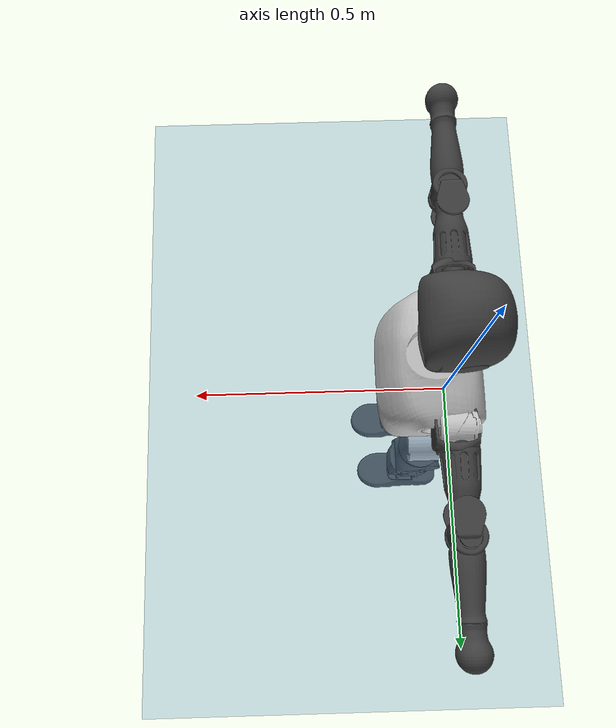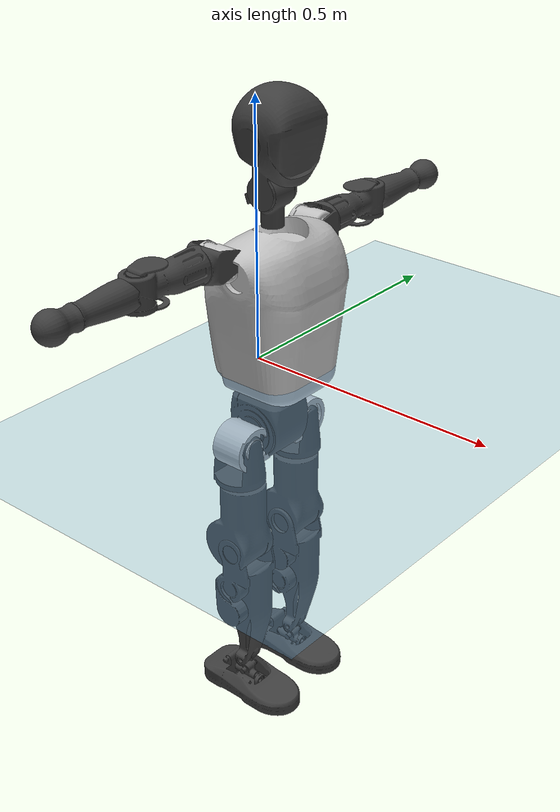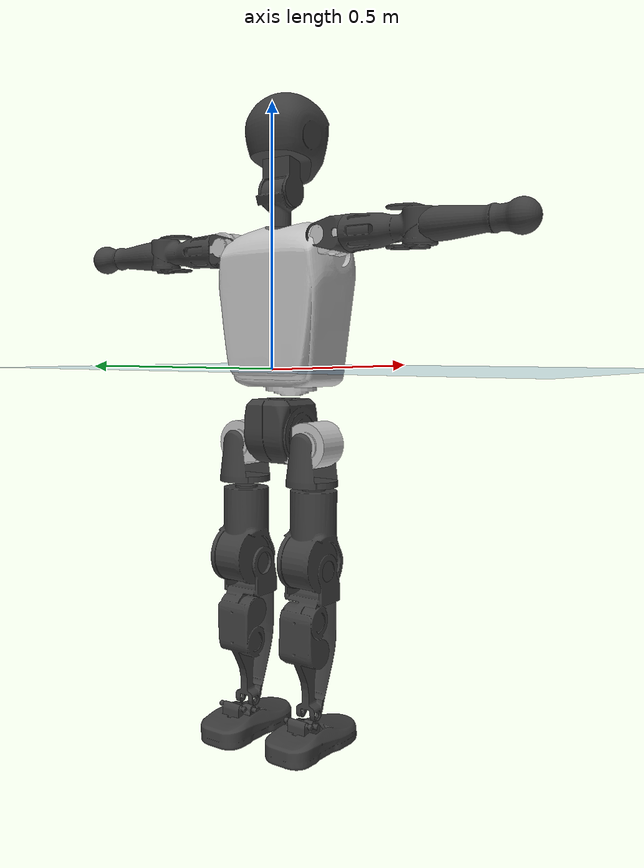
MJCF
<mujoco model="T1">
  <compiler angle="radian" assetdir="assets" balanceinertia="true" inertiafromgeom="false"/>

  <option timestep="0.005" density="1.2" viscosity="2e-05"/>

  <size nkey="1"/>

  <visual>
    <quality shadowsize="8192"/>
    <map shadowclip="0.5"/>
  </visual>

  <default>
    <default class="/">
      <joint armature="0.01" damping="0.01" frictionloss="0.1"/>
      <geom contype="0" conaffinity="0" group="1" solref="-1000 -80"/>
      <site size="0.01 0.005 0.005" group="5"/>
      <general forcelimited="true" biastype="affine" gainprm="25" biasprm="0 -25 -0.6"/>
      <default class="t1">
        <geom rgba="0.25 0.25 0.25 1"/>
        <default class="visual">
          <geom type="mesh" group="2"/>
        </default>
        <default class="collision">
          <geom group="3"/>
        </default>
        <default class="foot">
          <geom size="0.1115 0.05 0.015" type="box" condim="6" group="4" priority="1" solimp="0.015 1 0.015"/>
        </default>
        <default class="reward_collision_sphere">
          <geom group="5" rgba="1 0 0 1"/>
        </default>
      </default>
    </default>
  </default>

  <asset>
    <texture type="skybox" colorspace="auto" name="//unnamed_texture_0" builtin="gradient" rgb1="0.95 0.95 0.95" rgb2="0.95 0.95 0.95" width="100" height="600"/>
    <texture type="2d" colorspace="auto" name="texplane" builtin="checker" rgb1="0.345 0.575 0.748" rgb2="0.345 0.575 0.748" markrgb="1 1 1" width="512" height="512"/>
    <material name="MatPlane" class="/" texture="texplane" texuniform="true" texrepeat="2 2" specular="0.9"/>
    <mesh name="Trunk" class="/" file="Trunk.stl"/>
    <mesh name="H1" class="/" file="H1.stl"/>
    <mesh name="H2" class="/" file="H2.stl"/>
    <mesh name="AL1" class="/" file="AL1.stl"/>
    <mesh name="AL2" class="/" file="AL2.stl"/>
    <mesh name="AL3" class="/" file="AL3.stl"/>
    <mesh name="left_hand_link" class="/" file="left_hand_link.stl"/>
    <mesh name="AR1" class="/" file="AR1.stl"/>
    <mesh name="AR2" class="/" file="AR2.stl"/>
    <mesh name="AR3" class="/" file="AR3.stl"/>
    <mesh name="right_hand_link" class="/" file="right_hand_link.stl"/>
    <mesh name="Waist" class="/" file="Waist.stl"/>
    <mesh name="Hip_Pitch_Left" class="/" file="Hip_Pitch_Left.stl"/>
    <mesh name="Hip_Roll_Left" class="/" file="Hip_Roll_Left.stl"/>
    <mesh name="Hip_Yaw_Left" class="/" file="Hip_Yaw_Left.stl"/>
    <mesh name="Shank_Left" class="/" file="Shank_Left.stl"/>
    <mesh name="Ankle_Cross_Left" class="/" file="Ankle_Cross_Left.stl"/>
    <mesh name="left_foot_link" class="/" file="left_foot_link.stl"/>
    <mesh name="Hip_Pitch_Right" class="/" file="Hip_Pitch_Right.stl"/>
    <mesh name="Hip_Roll_Right" class="/" file="Hip_Roll_Right.stl"/>
    <mesh name="Hip_Yaw_Right" class="/" file="Hip_Yaw_Right.stl"/>
    <mesh name="Shank_Right" class="/" file="Shank_Right.stl"/>
    <mesh name="Ankle_Cross_Right" class="/" file="Ankle_Cross_Right.stl"/>
    <mesh name="right_foot_link" class="/" file="right_foot_link.stl"/>
  </asset>

  <worldbody>
    <geom name="floor" class="/" size="100 100 0.125" type="plane" group="0" material="MatPlane"/>
    <light name="toplight_shadow" class="/" pos="0 0 5" dir="0.0990148 0.0990148 -0.990148" type="directional" ambient="0.04 0.04 0.04" diffuse="0.55 0.55 0.55" specular="0.12 0.12 0.12"/>
    <light name="toplight_fill" class="/" pos="0 0 5" dir="0.0990148 0.0990148 -0.990148" type="directional" castshadow="false" ambient="0.04 0.04 0.04" diffuse="0.3 0.3 0.3" specular="0.08 0.08 0.08"/>
    <body name="trunk" childclass="t1" pos="-0.00187174 -0.00054524 -0.000744748" quat="0.999999 -0.000191477 -0.000626648 0.000932151">
      <inertial pos="0.0231695 4.86519e-05 0.11441" quat="0.999958 0.00599056 -0.00683769 -0.000604395" mass="4.76005" diaginertia="0.00135679 0.0197036 0.0807112"/>
      <joint name="//unnamed_joint_0" type="free" armature="0" damping="0" frictionloss="0"/>
      <geom name="//unnamed_geom_1" class="visual" rgba="0.76 0.76 0.76 1" mesh="Trunk"/>
      <geom name="//unnamed_geom_2" class="collision" size="0.0570841 0.0761121 0.114168" pos="0.0261492 0 0.13016" type="box"/>
      <geom name="//unnamed_geom_3" class="reward_collision_sphere" size="0.087529" pos="0.0261492 0 0.108467"/>
      <geom name="//unnamed_geom_4" class="reward_collision_sphere" size="0.0114168" pos="0.0261492 0.0648445 0"/>
      <geom name="//unnamed_geom_5" class="reward_collision_sphere" size="0.0114168" pos="0.0261492 -0.0648445 0"/>
      <geom name="//unnamed_geom_6" class="reward_collision_sphere" size="0.0114168" pos="0.0261492 0.0816278 0.19524"/>
      <geom name="//unnamed_geom_7" class="reward_collision_sphere" size="0.0114168" pos="0.0261492 -0.0816278 0.19524"/>
      <site name="imu" pos="0.028856 -0.00207512 -0.013396" size="0.00761121"/>
      <camera name="track" pos="0 -1.52575 0" quat="0.707107 0.707107 0 0" mode="trackcom"/>
      <camera name="ego_camera" pos="0.05317 0 0.455561" quat="-0.5 -0.5 0.5 0.5"/>
      <body name="H1" pos="0.0343696 0.00609727 0.270668" quat="1 0.000234125 -0.000381299 -0.000714987">
        <inertial pos="0.000799761 -0.00174455 0.0623527" quat="0.775332 -0.0364018 0.000873224 0.630503" mass="0.185092" diaginertia="3.82426e-06 6.18188e-05 0.00022132"/>
        <joint name="AAHead_yaw" pos="0 0 0" axis="0.0228959 0.0141407 0.999638" range="-1.60059 1.59603" armature="0.00600618" damping="0.00953597" frictionloss="0.073297"/>
        <geom name="//unnamed_geom_8" class="visual" mesh="H1"/>
        <body name="H2" pos="0.000657178 -0.00117913 0.0662287" quat="0.999998 -0.0011101 7.24912e-05 0.00140371">
          <inertial pos="0.00294013 0.00753747 0.106237" quat="0.988721 0.10541 -0.0653725 -0.0839393" mass="0.260092" diaginertia="3.10576e-05 0.000490246 0.00252053"/>
          <joint name="Head_pitch" pos="0 0 0" axis="0.000866845 -0.999999 -0.00051911" stiffness="0.00357882" range="-1.18711 0.347988" armature="0.00689414" damping="0.00547055" frictionloss="0.0732129"/>
          <geom name="//unnamed_geom_9" class="visual" mesh="H2"/>
          <geom name="//unnamed_geom_10" class="collision" size="0.0608897" pos="0.00435819 0 0.119314"/>
          <geom name="//unnamed_geom_11" class="reward_collision_sphere" size="0.0685009" pos="0.00871639 0 0.108467"/>
        </body>
      </body>
      <body name="AL1" pos="0.0260735 0.0758457 0.236341" quat="1 0.000137048 0.000378962 7.72974e-05">
        <inertial pos="0.0060443 0.0284425 0.0031619" quat="0.509546 0.493096 -0.497789 0.499426" mass="0.230901" diaginertia="2.0972e-05 0.000327382 0.000430109"/>
        <joint name="Left_Shoulder_Pitch" pos="0 0 0" axis="0.00907293 0.999947 -0.00490209" range="-3.30328 1.19917" armature="0.00707685" damping="0" frictionloss="0.0844267"/>
        <geom name="//unnamed_geom_12" class="visual" rgba="0.76 0.76 0.76 1" mesh="AL1"/>
        <body name="AL2" pos="0.00424844 0.031503 -0.0018628" quat="1 0.000148131 0.000363009 6.11366e-05">
          <inertial pos="0.0028697 0.0268835 -0.000593637" quat="0.487185 0.512193 -0.488427 0.511614" mass="0.0683806" diaginertia="5.62928e-06 7.60779e-05 0.000251404"/>
          <joint name="Left_Shoulder_Roll" pos="0 0 0" axis="-0.999997 0.000404529 0.00251309" range="-1.61145 1.83303" armature="0.00736266" damping="0" frictionloss="0.0673745"/>
          <geom name="//unnamed_geom_13" class="visual" mesh="AL2"/>
          <body name="AL3" pos="-0.00573272 0.0453037 -0.000347258" quat="1 5.35479e-05 -0.000720712 -3.33018e-06">
            <inertial pos="0.000814769 0.0671709 -0.00366035" quat="0.716689 0.697329 0.00801611 -0.00492774" mass="0.446074" diaginertia="0.000196862 0.00334818 0.000949777"/>
            <joint name="Left_Elbow_Pitch" pos="0 0 0" axis="0.00381443 -0.999916 0.0123605" range="-2.31658 2.18976" armature="0.00931588" damping="0.0042369" frictionloss="0.0724393"/>
            <geom name="//unnamed_geom_14" class="visual" mesh="AL3"/>
            <geom name="//unnamed_geom_15" class="collision" size="0.0228336 0.0570841" pos="0 0.0381438 0" quat="0.707105 0.707108 0 0" type="cylinder"/>
            <geom name="//unnamed_geom_16" class="reward_collision_sphere" size="0.0274004"/>
            <body name="left_hand_link" pos="0.00119535 0.111975 0.000626849" quat="0.999999 -0.000988722 0.00112319 -0.000179222">
              <inertial pos="-0.00748168 0.0876619 -0.00179852" quat="0.710354 0.703838 -0.000264804 0.00315942" mass="0.143565" diaginertia="0.000122089 0.00204726 0.00033373"/>
              <joint name="Left_Elbow_Yaw" pos="0 0 0" axis="0.00329335 -0.00925922 0.999952" stiffness="0.000229758" range="-2.45193 0.0265941" armature="0.00635411" damping="0" frictionloss="0.0633187"/>
              <geom name="//unnamed_geom_17" class="visual" mesh="left_hand_link"/>
              <geom name="//unnamed_geom_18" class="collision" size="0.0228336 0.0665981" pos="0 0.099174 0" quat="0.707105 0.707108 0 0" type="cylinder"/>
              <geom name="//unnamed_geom_19" class="reward_collision_sphere" size="0.0380561"/>
              <geom name="//unnamed_geom_20" class="reward_collision_sphere" size="0.0266393" pos="0 0.0839164 0"/>
              <geom name="//unnamed_geom_21" class="reward_collision_sphere" size="0.0266393" pos="0 0.164018 0"/>
            </body>
          </body>
        </body>
      </body>
      <body name="AR1" pos="0.0217161 -0.0760265 0.239412" quat="1 -0.00037925 0.000324843 0.000170435">
        <inertial pos="-0.000605128 -0.033132 -0.000648047" quat="0.504589 0.495855 -0.504136 0.495343" mass="0.229314" diaginertia="2.13673e-05 0.00033821 0.000434885"/>
        <joint name="Right_Shoulder_Pitch" pos="0 0 0" axis="-0.00375368 -0.999979 0.00522384" range="-1.18985 3.33756" armature="0.00688169" damping="0.0343818" frictionloss="0.0799987"/>
        <geom name="//unnamed_geom_22" class="visual" rgba="0.76 0.76 0.76 1" mesh="AR1"/>
        <body name="AR2" pos="-0.00354833 -0.0353369 0.00520531" quat="1 -0.000640004 0.000694355 -3.86468e-06">
          <inertial pos="0.00259345 -0.0321274 0.00630644" quat="0.509209 0.496611 -0.511716 0.481903" mass="0.0692746" diaginertia="6.16974e-06 9.37781e-05 0.000260189"/>
          <joint name="Right_Shoulder_Roll" pos="0 0 0" axis="-0.999996 0.00217814 0.00194721" stiffness="0.0237081" range="-1.87327 1.52614" armature="0.00766825" damping="0" frictionloss="0.0701597"/>
          <geom name="//unnamed_geom_23" class="visual" mesh="AR2"/>
          <body name="AR3" pos="-0.00356902 -0.0479611 0.000988896" quat="1 -0.00029773 0.000837134 0.000421753">
            <inertial pos="0.00540303 -0.0641485 -0.000815807" quat="0.706867 0.707341 -0.00276991 0.000572187" mass="0.446506" diaginertia="0.000195243 0.00331604 0.000856962"/>
            <joint name="Right_Elbow_Pitch" pos="0 0 0" axis="-0.00143813 0.999997 -0.00173871" stiffness="0.0179898" range="-2.26143 2.30325" armature="0.00762742" damping="0" frictionloss="0.0974208"/>
            <geom name="//unnamed_geom_24" class="visual" mesh="AR3"/>
            <geom name="//unnamed_geom_25" class="collision" size="0.0228336 0.0570841" pos="0 -0.0381438 0" quat="0.707105 0.707108 0 0" type="cylinder"/>
            <geom name="//unnamed_geom_26" class="reward_collision_sphere" size="0.0274004"/>
            <body name="right_hand_link" pos="-0.00163665 -0.113257 0.0015324" quat="1 -0.00076593 0.00034871 -0.000128784">
              <inertial pos="0.000942478 -0.0858239 -0.00364108" quat="0.706098 0.708112 -0.000763861 -0.00134983" mass="0.139059" diaginertia="0.000127787 0.00216152 0.000312566"/>
              <joint name="Right_Elbow_Yaw" pos="0 0 0" axis="9.70076e-05 -0.000269104 1" range="-0.0248294 2.41679" armature="0.00741789" damping="0.0011161" frictionloss="0.0953229"/>
              <geom name="//unnamed_geom_27" class="visual" mesh="right_hand_link"/>
              <geom name="//unnamed_geom_28" class="collision" size="0.0228336 0.0665981" pos="0 -0.099174 0" quat="0.707105 0.707108 0 0" type="cylinder"/>
              <geom name="//unnamed_geom_29" class="reward_collision_sphere" size="0.0380561"/>
              <geom name="//unnamed_geom_30" class="reward_collision_sphere" size="0.0266393" pos="0 -0.0839164 0"/>
              <geom name="//unnamed_geom_31" class="reward_collision_sphere" size="0.0266393" pos="0 -0.164018 0"/>
            </body>
          </body>
        </body>
      </body>
      <body name="Waist" pos="0.0282945 -0.000377942 -0.12333" quat="0.999999 0.00088067 0.000588028 -0.000296525">
        <inertial pos="0.000382486 -0.00146018 0.00649556" quat="0.983168 -2.73741e-05 -0.182699 -0.000992437" mass="1.17046" diaginertia="7.67975e-05 0.0014029 0.00646933"/>
        <joint name="Waist" pos="0 0 0" axis="0.0154971 -0.00446764 0.99987" range="-1.54467 1.59252" armature="0.00759536" damping="0.00827049" frictionloss="0.0950521"/>
        <geom name="//unnamed_geom_32" class="visual" mesh="Waist"/>
        <body name="Hip_Pitch_Left" pos="0.00198568 0.0826833 -0.00138036" quat="0.999999 -0.000173296 -0.00042901 0.00101279">
          <inertial pos="-0.00135151 -0.00214383 -0.0188163" quat="0.975443 0.219791 0.0141689 0.00171353" mass="0.435414" diaginertia="2.81188e-05 0.000352165 0.0017124"/>
          <joint name="Left_Hip_Pitch" pos="0 0 0" axis="0.00352726 0.999932 0.011141" range="-1.82505 1.56363" armature="0.00688554" damping="0" frictionloss="0.0763064"/>
          <geom name="//unnamed_geom_33" class="visual" rgba="0.76 0.76 0.76 1" mesh="Hip_Pitch_Left"/>
          <body name="Hip_Roll_Left" pos="-0.00514443 0.00235932 -0.0198982" quat="0.999997 -0.00148884 0.000402474 0.00169631">
            <inertial pos="-0.00132872 0.00138971 -0.057902" quat="0.705608 -0.000485912 -0.00997701 0.708532" mass="0.191205" diaginertia="3.21082e-05 0.000418947 0.00085809"/>
            <joint name="Left_Hip_Roll" pos="0 0 0" axis="-0.999783 0.0200503 0.00564783" range="-1.68478 0.152363" armature="0.00792264" damping="0.0118824" frictionloss="0.0737901"/>
            <geom name="//unnamed_geom_34" class="visual" mesh="Hip_Roll_Left"/>
            <geom name="//unnamed_geom_35" class="reward_collision_sphere" size="0.0418617"/>
            <body name="Hip_Yaw_Left" pos="-0.000559869 -0.00107735 -0.0898457" quat="0.999997 0.000858164 -0.000973034 0.00201861">
              <inertial pos="0.00291698 -0.00248217 -0.0981912" quat="0.698111 -0.0391791 -0.0391254 0.713846" mass="0.911449" diaginertia="0.00036491 0.00644856 0.003872"/>
              <joint name="Left_Hip_Yaw" pos="0 0 0" axis="-0.0065002 0.00489538 -0.999967" stiffness="0.0265941" range="-1.13195 0.914522" armature="0.00778086" damping="0.0166111" frictionloss="0.0618876"/>
              <geom name="//unnamed_geom_36" class="visual" mesh="Hip_Yaw_Left"/>
              <geom name="//unnamed_geom_37" class="collision" size="0.0380561 0.0608897" type="cylinder"/>
              <body name="Shank_Left" pos="-0.00303036 -0.00496387 -0.146547" quat="1 -0.000317436 0.000204755 -0.000354089">
                <inertial pos="0.00387312 0.00171904 -0.133482" quat="0.99541 0.023283 -0.0243855 0.0895628" mass="0.786492" diaginertia="0.00055095 0.00822952 0.00275818"/>
                <joint name="Left_Knee_Pitch" pos="0 0 0" axis="-0.019441 0.999786 0.00710683" range="0.00808442 2.27984" armature="0.00856873" damping="0.0176519" frictionloss="0.0538194"/>
                <geom name="//unnamed_geom_38" class="visual" mesh="Shank_Left"/>
                <geom name="//unnamed_geom_39" class="collision" size="0.0380561 0.0570841" pos="0 0 -0.13016" type="cylinder"/>
                <geom name="//unnamed_geom_40" class="reward_collision_sphere" size="0.0494729"/>
                <body name="Ankle_Cross_Left" pos="0.00179881 -0.00251714 -0.303362" quat="1 0.000552976 -0.000604527 0.000447077">
                  <inertial pos="-0.00163157 0.00205184 -0.0109451" quat="0.435115 0.547822 0.556195 0.448568" mass="0.0318143" diaginertia="4.51816e-07 6.50941e-06 1.73339e-05"/>
                  <joint name="Left_Ankle_Pitch" pos="0 0 0" axis="0.0102377 0.999895 -0.0102332" range="-0.86087 0.390733" armature="0.0050558" damping="0" frictionloss="0.0756613"/>
                  <geom name="//unnamed_geom_41" class="visual" mesh="Ankle_Cross_Left"/>
                  <body name="left_foot_link" pos="-0.0065074 0.00281312 -0.0133544" quat="1 0.000115168 0.00021135 -0.000498495">
                    <inertial pos="0.00566527 -0.00190787 -0.0102234" quat="0.00443691 0.61385 -0.00654432 0.789383" mass="0.301937" diaginertia="4.28824e-05 0.000649189 0.0035527"/>
                    <joint name="Left_Ankle_Roll" pos="0 0 0" axis="-0.999977 -0.00402139 -0.00545804" stiffness="0.00871142" range="-0.462663 0.44529" armature="0.00738537" damping="0.0418356" frictionloss="0.067086"/>
                    <geom name="//unnamed_geom_42" class="visual" mesh="left_foot_link"/>
                    <geom name="left_foot" class="foot" size="0.0898772 0.0458143 0.0117591" pos="0.00435819 0 -0.01627"/>
                    <geom name="//unnamed_geom_44" class="reward_collision_sphere" size="0.0395783" pos="0.00435819 0 -0.01627"/>
                    <geom name="//unnamed_geom_45" class="reward_collision_sphere" size="0.0228336" pos="0.0414028 -0.0175462 -0.01627"/>
                    <geom name="//unnamed_geom_46" class="reward_collision_sphere" size="0.0228336" pos="-0.0305074 -0.0175462 -0.01627"/>
                    <site name="left_foot" class="foot" pos="0.00435819 0 -0.01627" size="0.00761121"/>
                  </body>
                </body>
              </body>
            </body>
          </body>
        </body>
        <body name="Hip_Pitch_Right" pos="0.000977993 -0.0791772 0.00177775" quat="1 -0.000215174 0.000236391 -0.000708825">
          <inertial pos="-0.00210976 0.00575034 -0.0152869" quat="0.974105 -0.22518 0.017214 -0.010805" mass="0.464637" diaginertia="3.06445e-05 0.000354035 0.00188047"/>
          <joint name="Right_Hip_Pitch" pos="0 0 0" axis="0.000249406 -1 0.000827452" range="-1.42038 1.67724" armature="0.00860793" damping="0" frictionloss="0.0972148"/>
          <geom name="//unnamed_geom_47" class="visual" rgba="0.76 0.76 0.76 1" mesh="Hip_Pitch_Right"/>
          <body name="Hip_Roll_Right" pos="-0.00597985 0.000853596 -0.0203033" quat="0.999999 0.000436632 0.00119249 9.85869e-05">
            <inertial pos="-0.000765242 0.00308478 -0.0616845" quat="0.707083 -0.0104587 0.000180528 0.707053" mass="0.176303" diaginertia="2.88334e-05 0.000406089 0.000754607"/>
            <joint name="Right_Hip_Roll" pos="0 0 0" axis="-0.999607 0.0126837 -0.0250071" range="-0.204522 1.52684" armature="0.00828098" damping="0.00889507" frictionloss="0.0845335"/>
            <geom name="//unnamed_geom_48" class="visual" mesh="Hip_Roll_Right"/>
            <geom name="//unnamed_geom_49" class="reward_collision_sphere" size="0.0418617"/>
            <body name="Hip_Yaw_Right" pos="0.00487892 0.000718727 -0.0851558" quat="1 -0.00076728 0.000339905 0.000466225">
              <inertial pos="-0.00353762 -0.00524781 -0.0955234" quat="0.709052 -0.0619769 -0.0165239 0.702233" mass="0.953842" diaginertia="0.000398755 0.00646562 0.0037588"/>
              <joint name="Right_Hip_Yaw" pos="0 0 0" axis="-0.00819096 -1.83692e-05 -0.999966" stiffness="0.00332723" range="-1.03413 1.03772" armature="0.00664502" damping="0" frictionloss="0.0750566"/>
              <geom name="//unnamed_geom_50" class="visual" mesh="Hip_Yaw_Right"/>
              <geom name="//unnamed_geom_51" class="collision" size="0.0380561 0.0608897" type="cylinder"/>
              <body name="Shank_Right" pos="-0.00363522 0.00583631 -0.148694" quat="1 9.13968e-05 0.000109697 -0.000114647">
                <inertial pos="0.00366876 -0.00752307 -0.133038" quat="0.999668 -0.00084571 -0.0223105 -0.012889" mass="0.773859" diaginertia="0.000596915 0.00959647 0.00304146"/>
                <joint name="Right_Knee_Pitch" pos="0 0 0" axis="0.00786896 -0.999956 -0.00505372" range="-2.32752 0.0217216" armature="0.00752052" damping="0.0179324" frictionloss="0.0757215"/>
                <geom name="//unnamed_geom_52" class="visual" mesh="Shank_Right"/>
                <geom name="//unnamed_geom_53" class="collision" size="0.0380561 0.0570841" pos="0 0 -0.13016" type="cylinder"/>
                <geom name="//unnamed_geom_54" class="reward_collision_sphere" size="0.0494729"/>
                <body name="Ankle_Cross_Right" pos="0.00434876 0.000706769 -0.305845" quat="0.999999 0.000623467 -0.000597645 -0.000667595">
                  <inertial pos="-0.00323003 0.00408064 -0.00702496" quat="0.461524 0.553394 0.528722 0.448557" mass="0.0314815" diaginertia="4.49184e-07 7.6039e-06 1.77071e-05"/>
                  <joint name="Right_Ankle_Pitch" pos="0 0 0" axis="-0.00597479 -0.999911 -0.0119014" stiffness="0.0056145" range="-0.355313 0.867441" armature="0.00662574" damping="0.0319218" frictionloss="0.0713701"/>
                  <geom name="//unnamed_geom_55" class="visual" mesh="Ankle_Cross_Right"/>
                  <body name="right_foot_link" pos="0.00341016 -0.000680425 -0.0179522" quat="1 1.43755e-05 5.7731e-05 -3.63205e-05">
                    <inertial pos="-0.00189327 0.000733557 -0.0145975" quat="0.00139016 0.621872 0.00617474 0.783094" mass="0.294872" diaginertia="4.02558e-05 0.000628003 0.00322721"/>
                    <joint name="Right_Ankle_Roll" pos="0 0 0" axis="-0.999977 0.00109914 0.0066418" range="-0.463896 0.471469" armature="0.00699401" damping="0" frictionloss="0.0835185"/>
                    <geom name="//unnamed_geom_56" class="visual" mesh="right_foot_link"/>
                    <geom name="right_foot" class="foot" size="0.0974539 0.0422625 0.011851" pos="0.00435819 0 -0.01627"/>
                    <geom name="//unnamed_geom_58" class="reward_collision_sphere" size="0.0304449"/>
                    <geom name="//unnamed_geom_59" class="reward_collision_sphere" size="0.0228336" pos="0.00435819 0 -0.01627"/>
                    <geom name="//unnamed_geom_60" class="reward_collision_sphere" size="0.0228336" pos="0.0414028 0.0175462 -0.01627"/>
                    <geom name="//unnamed_geom_61" class="reward_collision_sphere" size="0.0228336" pos="-0.0305074 0.0175462 -0.01627"/>
                    <site name="right_foot" class="foot" pos="0.00435819 0 -0.01627" size="0.00761121"/>
                  </body>
                </body>
              </body>
            </body>
          </body>
        </body>
      </body>
    </body>
  </worldbody>

  <contact>
    <pair class="/" geom1="floor" geom2="left_foot" name="//unnamed_contact_0"/>
    <pair class="/" geom1="floor" geom2="right_foot" name="//unnamed_contact_1"/>
  </contact>

  <actuator>
    <general name="AAHead_yaw" class="/" joint="AAHead_yaw" forcerange="-4.87907 4.87907" gainprm="19.5254" biasprm="0 -19.5254 -0.49516"/>
    <general name="Head_pitch" class="/" joint="Head_pitch" forcerange="-5.76804 5.76804" gainprm="19.5254" biasprm="0 -19.5254 -0.49516"/>
    <general name="Left_Shoulder_Pitch" class="/" joint="Left_Shoulder_Pitch" forcerange="-14.7678 14.7678" gainprm="19.5254" biasprm="0 -19.5254 -0.49516"/>
    <general name="Left_Shoulder_Roll" class="/" joint="Left_Shoulder_Roll" forcerange="-12.7684 12.7684" gainprm="19.5254" biasprm="0 -19.5254 -0.49516"/>
    <general name="Left_Elbow_Pitch" class="/" joint="Left_Elbow_Pitch" forcerange="-12.3095 12.3095" gainprm="19.5254" biasprm="0 -19.5254 -0.49516"/>
    <general name="Left_Elbow_Yaw" class="/" joint="Left_Elbow_Yaw" forcerange="-13.2948 13.2948" gainprm="19.5254" biasprm="0 -19.5254 -0.49516"/>
    <general name="Right_Shoulder_Pitch" class="/" joint="Right_Shoulder_Pitch" forcerange="-13.6051 13.6051" gainprm="19.5254" biasprm="0 -19.5254 -0.49516"/>
    <general name="Right_Shoulder_Roll" class="/" joint="Right_Shoulder_Roll" forcerange="-12.7258 12.7258" gainprm="19.5254" biasprm="0 -19.5254 -0.49516"/>
    <general name="Right_Elbow_Pitch" class="/" joint="Right_Elbow_Pitch" forcerange="-13.2916 13.2916" gainprm="19.5254" biasprm="0 -19.5254 -0.49516"/>
    <general name="Right_Elbow_Yaw" class="/" joint="Right_Elbow_Yaw" forcerange="-14.6447 14.6447" gainprm="19.5254" biasprm="0 -19.5254 -0.49516"/>
    <general name="Waist" class="/" joint="Waist" forcerange="-21.1365 21.1365" gainprm="19.5254" biasprm="0 -19.5254 -0.49516"/>
    <general name="Left_Hip_Pitch" class="/" joint="Left_Hip_Pitch" forcerange="-34.7441 34.7441" gainprm="19.5254" biasprm="0 -19.5254 -0.49516"/>
    <general name="Left_Hip_Roll" class="/" joint="Left_Hip_Roll" forcerange="-24.7864 24.7864" gainprm="19.5254" biasprm="0 -19.5254 -0.49516"/>
    <general name="Left_Hip_Yaw" class="/" joint="Left_Hip_Yaw" forcerange="-25.2957 25.2957" gainprm="19.5254" biasprm="0 -19.5254 -0.49516"/>
    <general name="Left_Knee_Pitch" class="/" joint="Left_Knee_Pitch" forcerange="-45.2727 45.2727" gainprm="19.5254" biasprm="0 -19.5254 -0.49516"/>
    <general name="Left_Ankle_Pitch" class="/" joint="Left_Ankle_Pitch" forcerange="-15.4857 15.4857" gainprm="19.5254" biasprm="0 -19.5254 -0.49516"/>
    <general name="Left_Ankle_Roll" class="/" joint="Left_Ankle_Roll" forcerange="-10.7531 10.7531" gainprm="19.5254" biasprm="0 -19.5254 -0.49516"/>
    <general name="Right_Hip_Pitch" class="/" joint="Right_Hip_Pitch" forcerange="-31.7165 31.7165" gainprm="19.5254" biasprm="0 -19.5254 -0.49516"/>
    <general name="Right_Hip_Roll" class="/" joint="Right_Hip_Roll" forcerange="-20.8332 20.8332" gainprm="19.5254" biasprm="0 -19.5254 -0.49516"/>
    <general name="Right_Hip_Yaw" class="/" joint="Right_Hip_Yaw" forcerange="-21.8208 21.8208" gainprm="19.5254" biasprm="0 -19.5254 -0.49516"/>
    <general name="Right_Knee_Pitch" class="/" joint="Right_Knee_Pitch" forcerange="-50.9954 50.9954" gainprm="19.5254" biasprm="0 -19.5254 -0.49516"/>
    <general name="Right_Ankle_Pitch" class="/" joint="Right_Ankle_Pitch" forcerange="-17.8266 17.8266" gainprm="19.5254" biasprm="0 -19.5254 -0.49516"/>
    <general name="Right_Ankle_Roll" class="/" joint="Right_Ankle_Roll" forcerange="-11.9754 11.9754" gainprm="19.5254" biasprm="0 -19.5254 -0.49516"/>
  </actuator>

  <sensor>
    <gyro site="imu" name="imu_angular_velocity"/>
    <velocimeter site="imu" name="imu_linear_velocity"/>
    <framelinvel objtype="site" objname="left_foot" name="left_foot_global_linear_velocity"/>
    <framelinvel objtype="site" objname="right_foot" name="right_foot_global_linear_velocity"/>
  </sensor>

  <keyframe>
    <key name="home" qpos="0 0 0.6385 1 0 0 0 0 0 0 1.4 0 -0.4 0 -1.4 0 0.4 0 -0.4 0 0 0.8 -0.4 0 0.4 0 0 -0.8 0.4 0"/>
  </keyframe>
</mujoco>
